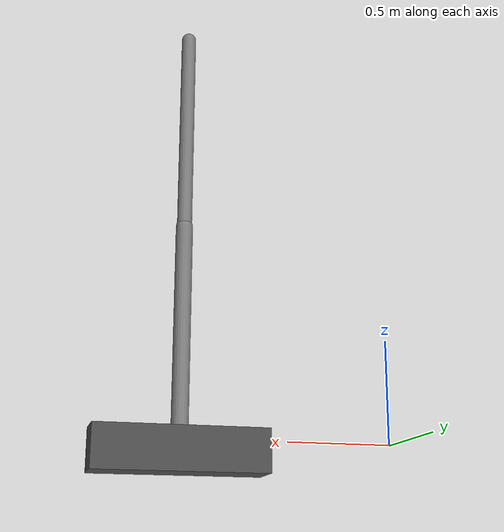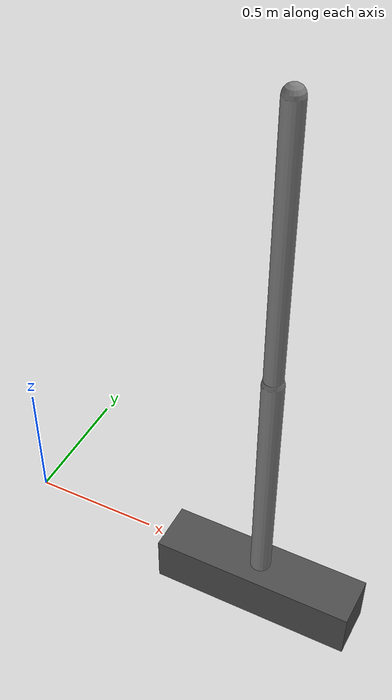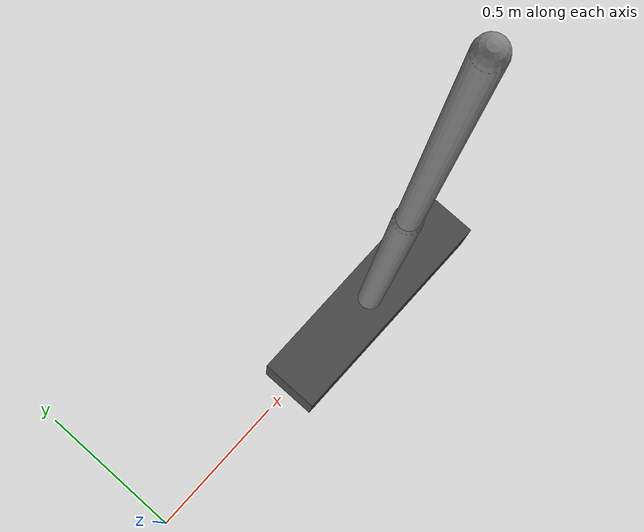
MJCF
<mujoco>
  <option timestep="0.01" />
  <worldbody>
    <geom type="box" size="0.4 0.1 0.1" pos="1 0 -0.05" rgba="0.3 0.3 0.3 1" />
    <body name="l1" pos="1 0 0">
      <joint name="j1" type="hinge" axis="0 0 1" pos="1 0 0" />
      <geom type="capsule" size="0.04" fromto="0 0 0 0 0 1" mass="1" />
      <inertial pos="0 0 0.5" mass="1" diaginertia="0.008 0.008 0.01" />
      <body name="l2" pos="0 0 1">
        <joint name="j2" type="hinge" axis="0 0 1" />
        <geom type="capsule" size="0.035" fromto="0 0 0 0 0 1" mass="1" />
        <inertial pos="0 0 0.5" mass="1" diaginertia="0.005 0.005 0.006" />
      </body>
    </body>
  </worldbody>
</mujoco>
